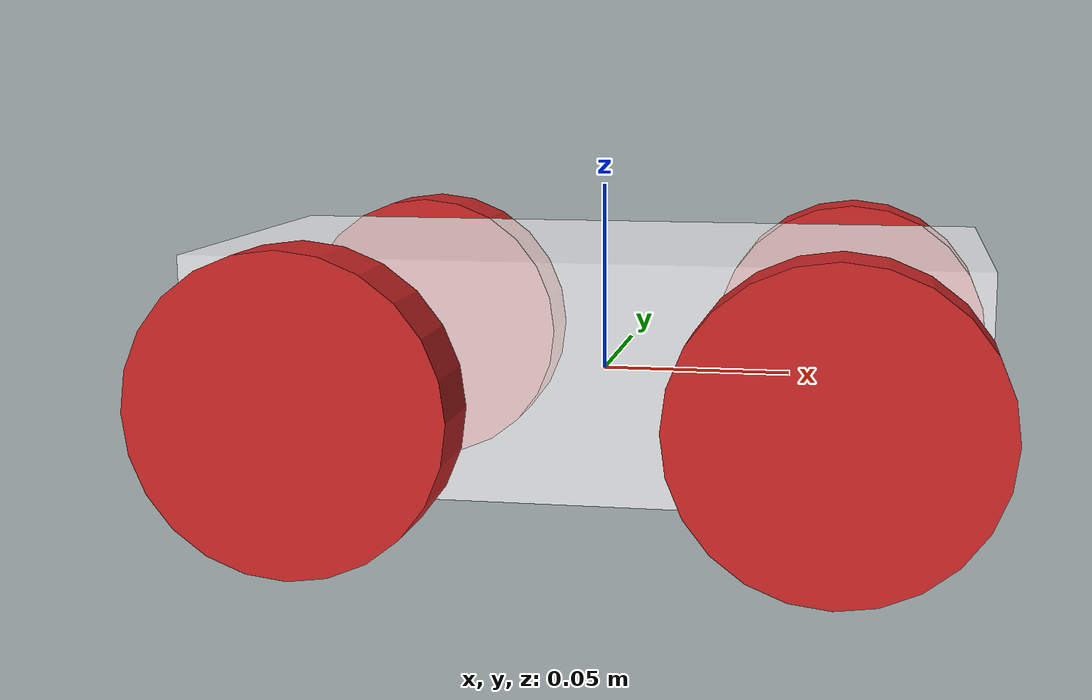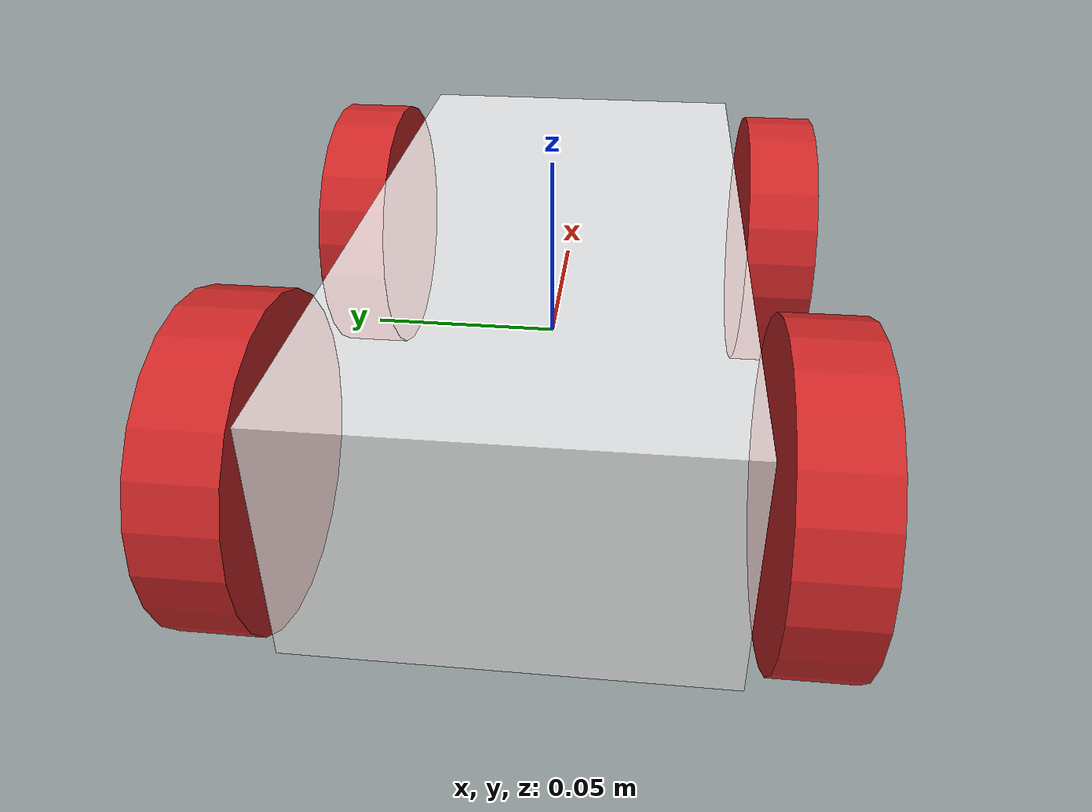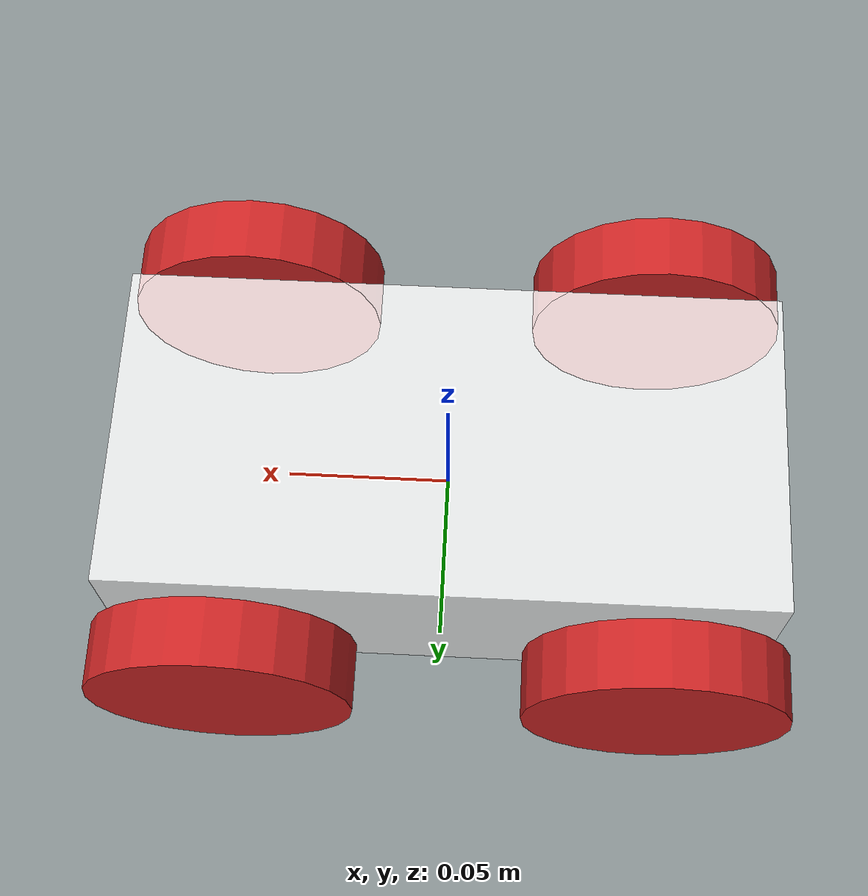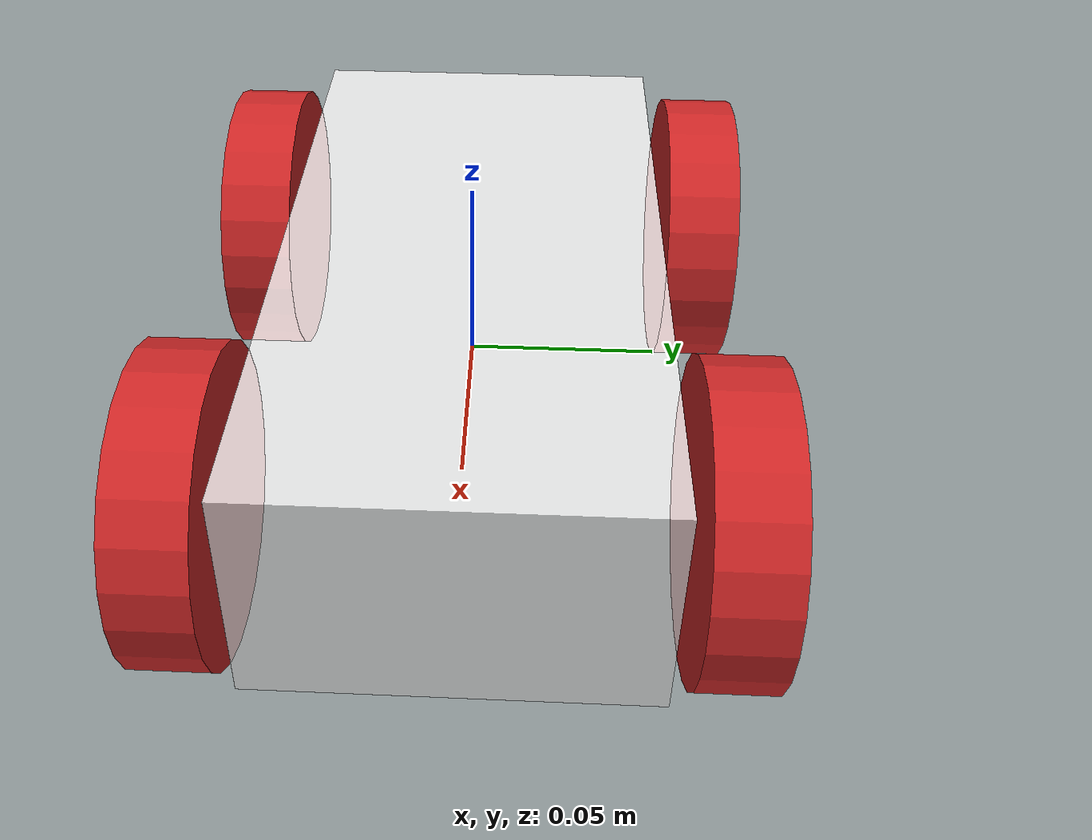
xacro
<robot name="mobile robot" xmlns:xacro="http://www.ros.org/wiki/xacro">

  <xacro:macro name="default_inertial" params="mass">
    <inertial>
      <mass value="${mass}" />
      <inertia ixx="1.0" ixy="0.0" ixz="0.0" iyy="1.0" iyz="0.0" izz="1.0" />
    </inertial>
  </xacro:macro>

  <xacro:macro name="wheel" params="name x y">
    <link name="${name}">
      <visual>
        <origin xyz="0 0 0" rpy="${pi/2} 0 0"/>
        <geometry>
          <cylinder length="0.02" radius="0.04"/>
        </geometry>
      </visual>
      <collision>
        <origin xyz="0 0 0" rpy="${pi/2} 0 0"/>
        <geometry>
           <cylinder length="0.02" radius="0.04"/>
        </geometry>
      </collision>
      <xacro:default_inertial mass="0.6"/>
    </link>

    <joint name="base_link_${name}" type="continuous">
      <origin xyz="${y*0.065} ${x*0.065} 0" rpy="0 0 0"/>
       <axis rpy="0 0 0" xyz="0 1 0"/>
      <parent link="base_link"/>
      <child link="${name}"/>
    </joint>

    <gazebo reference="${name}">
      <material>Gazebo/Red</material>
    </gazebo>

    <gazebo reference="base_link_${name}_wheel">
      <mu1 value="200.0"/>
      <mu2 value="100.0"/>
      <kp value="10000000.0" />
      <kd value="1.0" />
    </gazebo>

    <transmission name="base_link_${name}_wheel_trans">
      <type>transmission_interface/SimpleTransmission</type>
      <actuator name="base_link_${name}_wheel_motor">
        <mechanicalReduction>1</mechanicalReduction>
      </actuator>
      <joint name="base_link_${name}">
        <hardwareInterface>hardware_interface/VelocityJointInterface</hardwareInterface>
      </joint>
    </transmission>
  </xacro:macro>

  <link name="base_link">
    <visual>
      <origin xyz="0 0 0.005" rpy="0 0 0"/>
      <geometry>
        <box size="0.20 0.10 0.06"/>
      </geometry>
      <material name="acrylic">
        <color rgba="1 1 1 0.8"/>
      </material>
    </visual>
    <collision>
      <origin xyz="0 0 0.005" rpy="0 0 0"/>
      <geometry>
        <box size="0.20 0.10 0.06"/>
      </geometry>
    </collision>
    <xacro:default_inertial mass="1.5"/>
  </link>

  <xacro:wheel name="wh_left_back" x="1" y="-1"/>
  <xacro:wheel name="wh_right_back" x="-1" y="-1"/>
  <xacro:wheel name="wh_left_front" x="1" y="1"/>
  <xacro:wheel name="wh_right_front" x="-1" y="1"/>

<!-- =================== Gazebo ==================== -->
  <gazebo>
     <plugin name="gazebo_ros_control" filename="libgazebo_ros_control.so">
       <robotNamespace>/</robotNamespace>
     </plugin>
  </gazebo>
  <plugin name="differential_drive_controller" filename="libgazebo_ros_diff_drive.so">
    <alwaysOn>true</alwaysOn>
    <updateRate>20</updateRate>
    <leftJoint>base_link_wh_left_back</leftJoint>
    <rightJoint>base_link_wh_right_back</rightJoint>
    <wheelSeparation>0.5</wheelSeparation>
    <wheelDiameter>0.1</wheelDiameter>
    <torque>20</torque>
    <commandTopic>/cmd_vel</commandTopic>
    <odometryTopic>/mobile_robot/odom</odometryTopic>
    <odometryFrame>odom</odometryFrame>
    <robotBaseFrame>base_link</robotBaseFrame>
  </plugin>

</robot>
